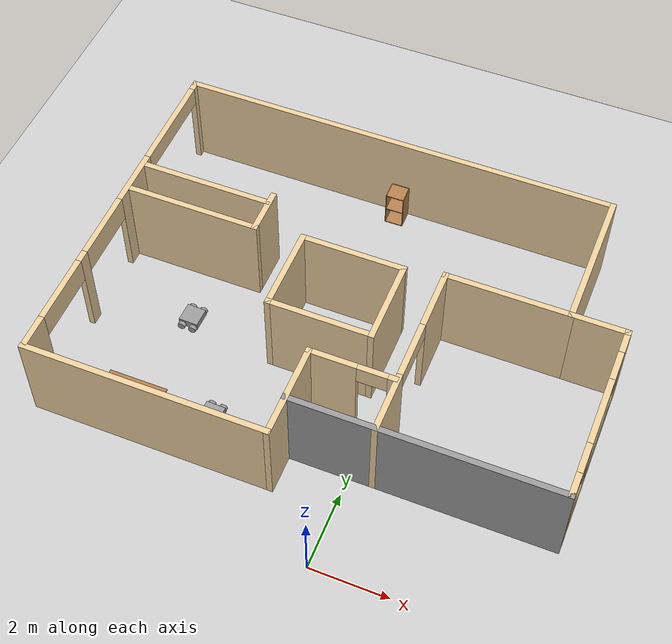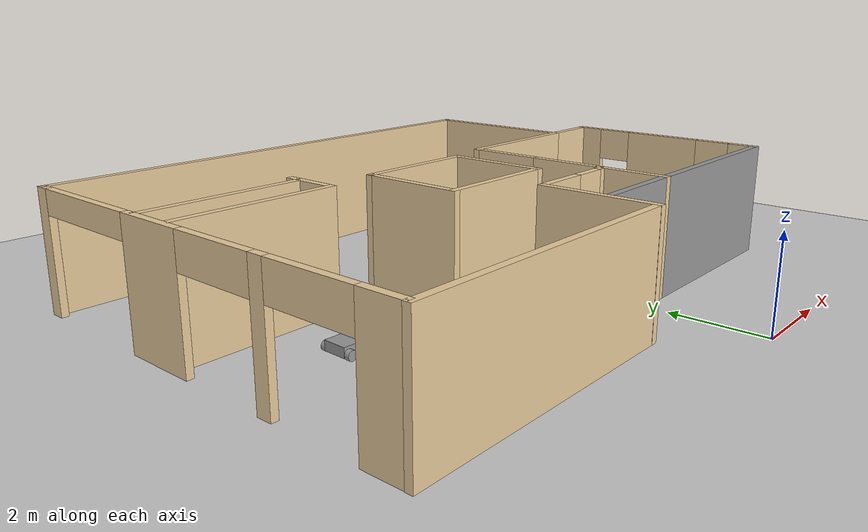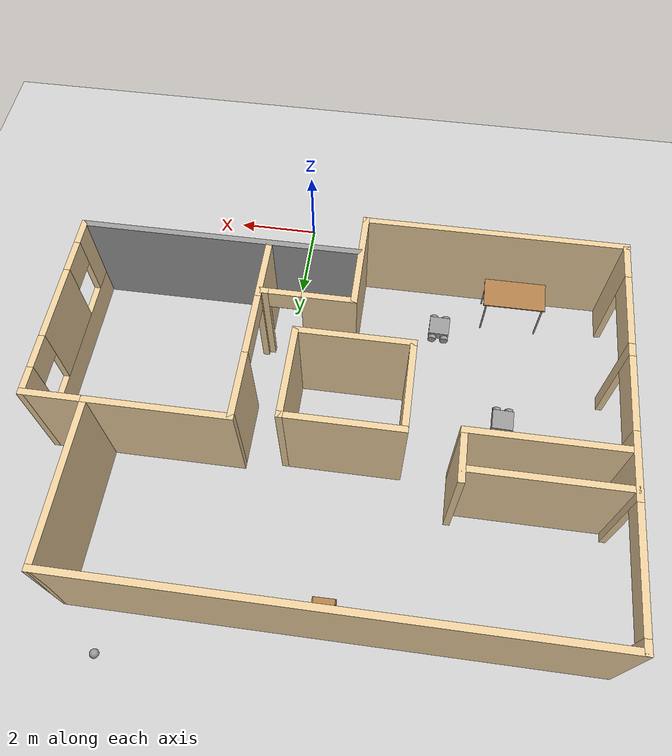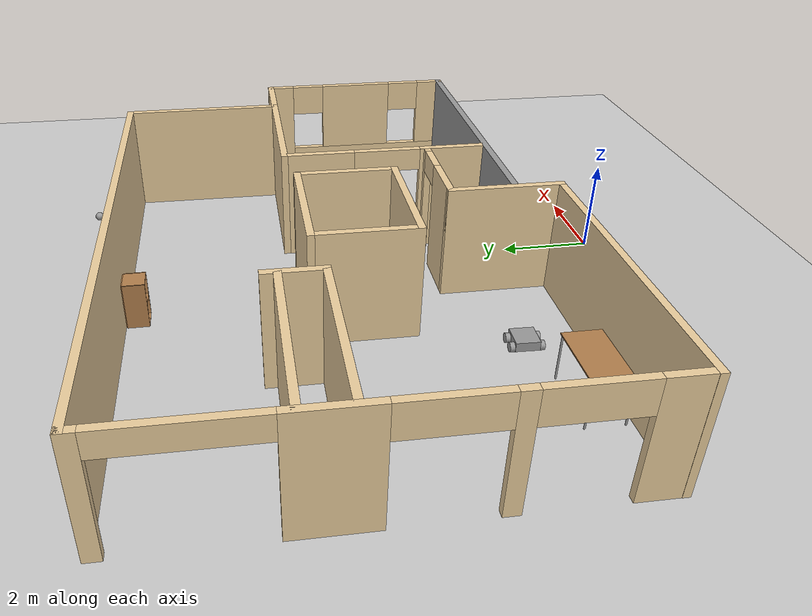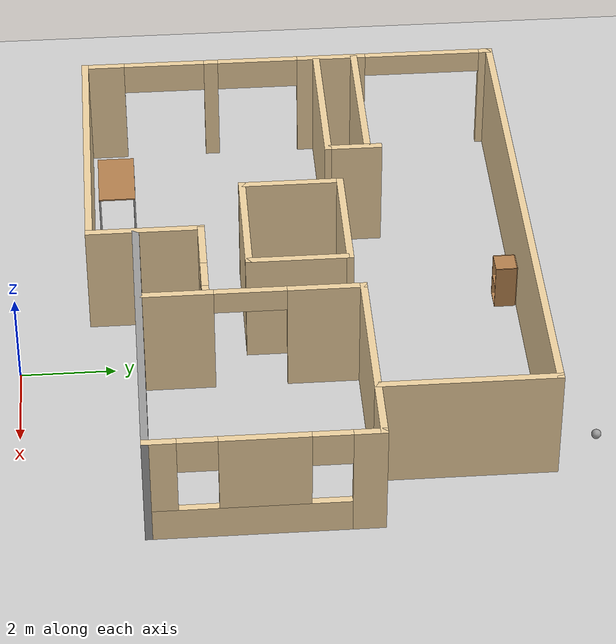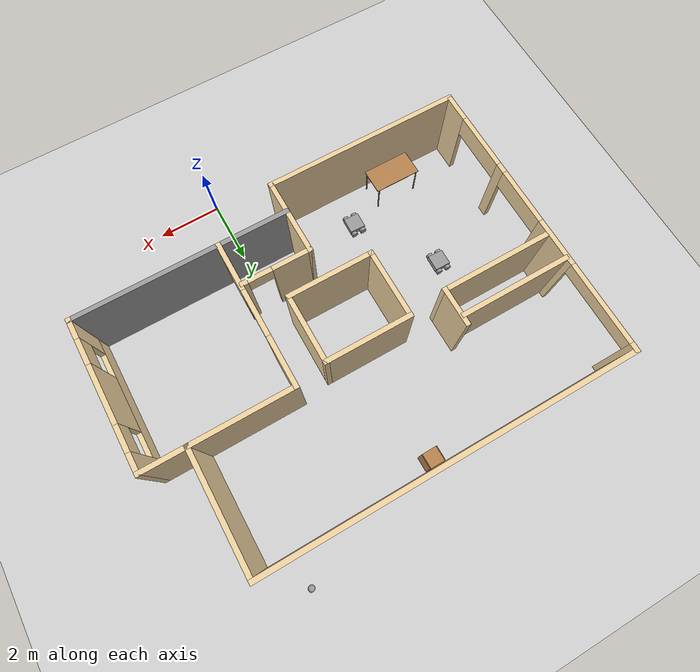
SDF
<sdf version="1.6">
 <world name="default">
  <plugin name="welcome_message" filename="libwelcome_message.so"/>
  <light name="sun" type="directional">
   <pose>0 0 10 0 -0 0</pose>
   <diffuse>0.8 0.8 0.8 1</diffuse>
   <specular>0.2 0.2 0.2 1</specular>
   <attenuation>
    <range>1000</range>
    <constant>0.9</constant>
    <linear>0.01</linear>
    <quadratic>0.001</quadratic>
   </attenuation>
   <direction>-0.5 0.1 -0.9</direction>
  </light>
  <model name="ground_plane">
   <static>1</static>
   <link name="link">
    <collision name="collision">
     <geometry><plane><normal>0 0 1</normal><size>100 100</size></plane></geometry>
     <surface>
      <contact><collide_bitmask>65535</collide_bitmask></contact>
      <friction><ode><mu>100</mu><mu2>50</mu2></ode></friction>
     </surface>
    </collision>
    <visual name="visual">
     <cast_shadows>0</cast_shadows>
     <geometry><plane><normal>0 0 1</normal><size>100 100</size></plane></geometry>
     <material>
      <script><uri>file://media/materials/scripts/gazebo.material</uri><name>Gazebo/Grey</name></script>
     </material>
    </visual>
   </link>
  </model>
  <gravity>0 0 -9.8</gravity>
  <magnetic_field>6e-06 2.3e-05 -4.2e-05</magnetic_field>
  <atmosphere type="adiabatic"/>
  <physics name="default_physics" default="0" type="ode">
   <max_step_size>0.001</max_step_size>
   <real_time_factor>1</real_time_factor>
   <real_time_update_rate>1000</real_time_update_rate>
  </physics>
  <scene><ambient>0.4 0.4 0.4 1</ambient><background>0.7 0.7 0.7 1</background><shadows>1</shadows></scene>
  <spherical_coordinates>
   <surface_model>EARTH_WGS84</surface_model>
   <latitude_deg>0</latitude_deg>
   <longitude_deg>0</longitude_deg>
   <elevation>0</elevation>
   <heading_deg>0</heading_deg>
  </spherical_coordinates>
  <model name="House">
   <pose>-1.30883 6.14848 0 0 -0 0</pose>
   <link name="Wall_1">
    <pose>-6.34695 0.039471 0 0 -0 1.5708</pose>
    <visual name="Wall_1_Visual_0">
     <pose>-4.18586 0 1.25 0 -0 0</pose>
     <geometry><box><size>0.878291 0.15 2.5</size></box></geometry>
     <material>
      <script><uri>file://media/materials/scripts/gazebo.material</uri><name>Gazebo/Grey</name></script>
      <ambient>0.921569 0.807843 0.615686 1</ambient>
     </material>
     <meta><layer>0</layer></meta>
    </visual>
    <collision name="Wall_1_Collision_0">
     <geometry><box><size>0.878291 0.15 2.5</size></box></geometry>
     <pose>-4.18586 0 1.25 0 -0 0</pose>
    </collision>
    <visual name="Wall_1_Visual_1">
     <pose>-1.78871 0 1.25 0 -0 0</pose>
     <geometry><box><size>0.316 0.15 2.5</size></box></geometry>
     <material>
      <script><uri>file://media/materials/scripts/gazebo.material</uri><name>Gazebo/Grey</name></script>
      <ambient>0.921569 0.807843 0.615686 1</ambient>
     </material>
     <meta><layer>0</layer></meta>
    </visual>
    <collision name="Wall_1_Collision_1">
     <geometry><box><size>0.316 0.15 2.5</size></box></geometry>
     <pose>-1.78871 0 1.25 0 -0 0</pose>
    </collision>
    <visual name="Wall_1_Visual_2">
     <pose>0.943988 0 1.25 0 -0 0</pose>
     <geometry><box><size>1.5494 0.15 2.5</size></box></geometry>
     <material>
      <script><uri>file://media/materials/scripts/gazebo.material</uri><name>Gazebo/Grey</name></script>
      <ambient>0.921569 0.807843 0.615686 1</ambient>
     </material>
     <meta><layer>0</layer></meta>
    </visual>
    <collision name="Wall_1_Collision_2">
     <geometry><box><size>1.5494 0.15 2.5</size></box></geometry>
     <pose>0.943988 0 1.25 0 -0 0</pose>
    </collision>
    <visual name="Wall_1_Visual_3">
     <pose>4.46934 0 1.25 0 -0 0</pose>
     <geometry><box><size>0.311314 0.15 2.5</size></box></geometry>
     <material>
      <script><uri>file://media/materials/scripts/gazebo.material</uri><name>Gazebo/Grey</name></script>
      <ambient>0.921569 0.807843 0.615686 1</ambient>
     </material>
     <meta><layer>0</layer></meta>
    </visual>
    <collision name="Wall_1_Collision_3">
     <geometry><box><size>0.311314 0.15 2.5</size></box></geometry>
     <pose>4.46934 0 1.25 0 -0 0</pose>
    </collision>
    <visual name="Wall_1_Visual_4">
     <pose>-2.84671 0 2.15 0 -0 0</pose>
     <geometry><box><size>1.8 0.15 0.7</size></box></geometry>
     <material>
      <script><uri>file://media/materials/scripts/gazebo.material</uri><name>Gazebo/Grey</name></script>
      <ambient>0.921569 0.807843 0.615686 1</ambient>
     </material>
     <meta><layer>0</layer></meta>
    </visual>
    <collision name="Wall_1_Collision_4">
     <geometry><box><size>1.8 0.15 0.7</size></box></geometry>
     <pose>-2.84671 0 2.15 0 -0 0</pose>
    </collision>
    <visual name="Wall_1_Visual_5">
     <pose>-0.730709 0 2.15 0 -0 0</pose>
     <geometry><box><size>1.8 0.15 0.7</size></box></geometry>
     <material>
      <script><uri>file://media/materials/scripts/gazebo.material</uri><name>Gazebo/Grey</name></script>
      <ambient>0.921569 0.807843 0.615686 1</ambient>
     </material>
     <meta><layer>0</layer></meta>
    </visual>
    <collision name="Wall_1_Collision_5">
     <geometry><box><size>1.8 0.15 0.7</size></box></geometry>
     <pose>-0.730709 0 2.15 0 -0 0</pose>
    </collision>
    <visual name="Wall_1_Visual_6">
     <pose>3.01619 0 2.25 0 -0 0</pose>
     <geometry><box><size>2.595 0.15 0.5</size></box></geometry>
     <material>
      <script><uri>file://media/materials/scripts/gazebo.material</uri><name>Gazebo/Grey</name></script>
      <ambient>0.921569 0.807843 0.615686 1</ambient>
     </material>
     <meta><layer>0</layer></meta>
    </visual>
    <collision name="Wall_1_Collision_6">
     <geometry><box><size>2.595 0.15 0.5</size></box></geometry>
     <pose>3.01619 0 2.25 0 -0 0</pose>
    </collision>
   </link>
   <link name="Wall_10">
    <collision name="Wall_10_Collision">
     <geometry><box><size>3.25 0.15 2.5</size></box></geometry>
     <pose>0 0 1.25 0 -0 0</pose>
    </collision>
    <visual name="Wall_10_Visual">
     <pose>0 0 1.25 0 -0 0</pose>
     <geometry><box><size>3.25 0.15 2.5</size></box></geometry>
     <material>
      <script><uri>file://media/materials/scripts/gazebo.material</uri><name>Gazebo/Grey</name></script>
      <ambient>0.921569 0.807843 0.615686 1</ambient>
     </material>
     <meta><layer>0</layer></meta>
    </visual>
    <pose>3.45305 0.989471 0 0 -0 3.14159</pose>
   </link>
   <link name="Wall_11">
    <pose>1.90305 -1.31053 0 0 0 -1.5708</pose>
    <visual name="Wall_11_Visual_0">
     <pose>-1.55351 0 1.25 0 -0 0</pose>
     <geometry><box><size>1.64298 0.15 2.5</size></box></geometry>
     <material>
      <script><uri>file://media/materials/scripts/gazebo.material</uri><name>Gazebo/Grey</name></script>
      <ambient>0.921569 0.807843 0.615686 1</ambient>
     </material>
     <meta><layer>0</layer></meta>
    </visual>
    <collision name="Wall_11_Collision_0">
     <geometry><box><size>1.64298 0.15 2.5</size></box></geometry>
     <pose>-1.55351 0 1.25 0 -0 0</pose>
    </collision>
    <visual name="Wall_11_Visual_1">
     <pose>1.57149 0 1.25 0 -0 0</pose>
     <geometry><box><size>1.60702 0.15 2.5</size></box></geometry>
     <material>
      <script><uri>file://media/materials/scripts/gazebo.material</uri><name>Gazebo/Grey</name></script>
      <ambient>0.921569 0.807843 0.615686 1</ambient>
     </material>
     <meta><layer>0</layer></meta>
    </visual>
    <collision name="Wall_11_Collision_1">
     <geometry><box><size>1.60702 0.15 2.5</size></box></geometry>
     <pose>1.57149 0 1.25 0 -0 0</pose>
    </collision>
    <visual name="Wall_11_Visual_2">
     <pose>0.017978 0 2.25 0 -0 0</pose>
     <geometry><box><size>1.5 0.15 0.5</size></box></geometry>
     <material>
      <script><uri>file://media/materials/scripts/gazebo.material</uri><name>Gazebo/Grey</name></script>
      <ambient>0.921569 0.807843 0.615686 1</ambient>
     </material>
     <meta><layer>0</layer></meta>
    </visual>
    <collision name="Wall_11_Collision_2">
     <geometry><box><size>1.5 0.15 0.5</size></box></geometry>
     <pose>0.017978 0 2.25 0 -0 0</pose>
    </collision>
   </link>
   <link name="Wall_18">
    <collision name="Wall_18_Collision">
     <geometry><box><size>2.5 0.15 2.5</size></box></geometry>
     <pose>0 0 1.25 0 -0 0</pose>
    </collision>
    <visual name="Wall_18_Visual">
     <pose>0 0 1.25 0 -0 0</pose>
     <geometry><box><size>2.5 0.15 2.5</size></box></geometry>
     <material>
      <script><uri>file://media/materials/scripts/gazebo.material</uri><name>Gazebo/Grey</name></script>
      <ambient>0.921569 0.807843 0.615686 1</ambient>
     </material>
     <meta><layer>0</layer></meta>
    </visual>
    <pose>-0.253052 -3.41447 0 0 -0 1.5708</pose>
   </link>
   <link name="Wall_2">
    <collision name="Wall_2_Collision">
     <geometry><box><size>11.5 0.15 2.5</size></box></geometry>
     <pose>0 0 1.25 0 -0 0</pose>
    </collision>
    <visual name="Wall_2_Visual">
     <pose>0 0 1.25 0 -0 0</pose>
     <geometry><box><size>11.5 0.15 2.5</size></box></geometry>
     <material>
      <script><uri>file://media/materials/scripts/gazebo.material</uri><name>Gazebo/Grey</name></script>
      <ambient>0.921569 0.807843 0.615686 1</ambient>
     </material>
     <meta><layer>0</layer></meta>
    </visual>
    <pose>-0.671948 4.58947 0 0 -0 0</pose>
   </link>
   <link name="Wall_20">
    <pose>0.796948 -2.23947 0 0 -0 0</pose>
    <visual name="Wall_20_Visual_0">
     <pose>-0.492928 0 1.25 0 -0 0</pose>
     <geometry><box><size>1.26415 0.15 2.5</size></box></geometry>
     <material>
      <script><uri>file://media/materials/scripts/gazebo.material</uri><name>Gazebo/Grey</name></script>
      <ambient>0.921569 0.807843 0.615686 1</ambient>
     </material>
     <meta><layer>0</layer></meta>
    </visual>
    <collision name="Wall_20_Collision_0">
     <geometry><box><size>1.26415 0.15 2.5</size></box></geometry>
     <pose>-0.492928 0 1.25 0 -0 0</pose>
    </collision>
    <visual name="Wall_20_Visual_1">
     <pose>1.00707 0 1.25 0 -0 0</pose>
     <geometry><box><size>0.235855 0.15 2.5</size></box></geometry>
     <material>
      <script><uri>file://media/materials/scripts/gazebo.material</uri><name>Gazebo/Grey</name></script>
      <ambient>0.921569 0.807843 0.615686 1</ambient>
     </material>
     <meta><layer>0</layer></meta>
    </visual>
    <collision name="Wall_20_Collision_1">
     <geometry><box><size>0.235855 0.15 2.5</size></box></geometry>
     <pose>1.00707 0 1.25 0 -0 0</pose>
    </collision>
    <visual name="Wall_20_Visual_2">
     <pose>0.514145 0 2.25 0 -0 0</pose>
     <geometry><box><size>0.75 0.15 0.5</size></box></geometry>
     <material>
      <script><uri>file://media/materials/scripts/gazebo.material</uri><name>Gazebo/Grey</name></script>
      <ambient>0.921569 0.807843 0.615686 1</ambient>
     </material>
     <meta><layer>0</layer></meta>
    </visual>
    <collision name="Wall_20_Collision_2">
     <geometry><box><size>0.75 0.15 0.5</size></box></geometry>
     <pose>0.514145 0 2.25 0 -0 0</pose>
    </collision>
   </link>
   <link name="Wall_26">
    <collision name="Wall_26_Collision">
     <geometry><box><size>2.75 0.15 2.5</size></box></geometry>
     <pose>0 0 1.25 0 -0 0</pose>
    </collision>
    <visual name="Wall_26_Visual">
     <pose>0 0 1.25 0 -0 0</pose>
     <geometry><box><size>2.75 0.15 2.5</size></box></geometry>
     <material>
      <script><uri>file://media/materials/scripts/gazebo.material</uri><name>Gazebo/Grey</name></script>
      <ambient>0.921569 0.807843 0.615686 1</ambient>
     </material>
     <meta><layer>0</layer></meta>
    </visual>
    <pose>-0.379097 0.799447 0 0 -0 3.14159</pose>
   </link>
   <link name="Wall_27">
    <collision name="Wall_27_Collision">
     <geometry><box><size>2.25 0.15 2.5</size></box></geometry>
     <pose>0 0 1.25 0 -0 0</pose>
    </collision>
    <visual name="Wall_27_Visual">
     <pose>0 0 1.25 0 -0 0</pose>
     <geometry><box><size>2.25 0.15 2.5</size></box></geometry>
     <material>
      <script><uri>file://media/materials/scripts/gazebo.material</uri><name>Gazebo/Grey</name></script>
      <ambient>0.921569 0.807843 0.615686 1</ambient>
     </material>
     <meta><layer>0</layer></meta>
    </visual>
    <pose>-1.6791 -0.250553 0 0 0 -1.5708</pose>
   </link>
   <link name="Wall_28">
    <collision name="Wall_28_Collision">
     <geometry><box><size>2.75 0.15 2.5</size></box></geometry>
     <pose>0 0 1.25 0 -0 0</pose>
    </collision>
    <visual name="Wall_28_Visual">
     <pose>0 0 1.25 0 -0 0</pose>
     <geometry><box><size>2.75 0.15 2.5</size></box></geometry>
     <material>
      <script><uri>file://media/materials/scripts/gazebo.material</uri><name>Gazebo/Grey</name></script>
      <ambient>0.921569 0.807843 0.615686 1</ambient>
     </material>
     <meta><layer>0</layer></meta>
    </visual>
    <pose>-0.379097 -1.30055 0 0 -0 0</pose>
   </link>
   <link name="Wall_29">
    <collision name="Wall_29_Collision">
     <geometry><box><size>2.25 0.15 2.5</size></box></geometry>
     <pose>0 0 1.25 0 -0 0</pose>
    </collision>
    <visual name="Wall_29_Visual">
     <pose>0 0 1.25 0 -0 0</pose>
     <geometry><box><size>2.25 0.15 2.5</size></box></geometry>
     <material>
      <script><uri>file://media/materials/scripts/gazebo.material</uri><name>Gazebo/Grey</name></script>
      <ambient>0.921569 0.807843 0.615686 1</ambient>
     </material>
     <meta><layer>0</layer></meta>
    </visual>
    <pose>0.920903 -0.250553 0 0 -0 1.5708</pose>
   </link>
   <link name="Wall_3">
    <collision name="Wall_3_Collision">
     <geometry><box><size>3.75 0.15 2.5</size></box></geometry>
     <pose>0 0 1.25 0 -0 0</pose>
    </collision>
    <visual name="Wall_3_Visual">
     <pose>0 0 1.25 0 -0 0</pose>
     <geometry><box><size>3.75 0.15 2.5</size></box></geometry>
     <material>
      <script><uri>file://media/materials/scripts/gazebo.material</uri><name>Gazebo/Grey</name></script>
      <ambient>0.921569 0.807843 0.615686 1</ambient>
     </material>
     <meta><layer>0</layer></meta>
    </visual>
    <pose>5.00305 2.78947 0 0 0 -1.5708</pose>
   </link>
   <link name="Wall_33">
    <collision name="Wall_33_Collision">
     <geometry><box><size>3.5 0.15 2.5</size></box></geometry>
     <pose>0 0 1.25 0 -0 0</pose>
    </collision>
    <visual name="Wall_33_Visual">
     <pose>0 0 1.25 0 -0 0</pose>
     <geometry><box><size>3.5 0.15 2.5</size></box></geometry>
     <material>
      <script><uri>file://media/materials/scripts/gazebo.material</uri><name>Gazebo/Grey</name></script>
      <ambient>0.921569 0.807843 0.615686 1</ambient>
     </material>
     <meta><layer>0</layer></meta>
    </visual>
    <pose>-4.61304 1.49905 0 0 -0 0</pose>
   </link>
   <link name="Wall_36">
    <collision name="Wall_36_Collision">
     <geometry><box><size>1.25 0.15 2.5</size></box></geometry>
     <pose>0 0 1.25 0 -0 0</pose>
    </collision>
    <visual name="Wall_36_Visual">
     <pose>0 0 1.25 0 -0 0</pose>
     <geometry><box><size>1.25 0.15 2.5</size></box></geometry>
     <material>
      <script><uri>file://media/materials/scripts/gazebo.material</uri><name>Gazebo/Grey</name></script>
      <ambient>0.921569 0.807843 0.615686 1</ambient>
     </material>
     <meta><layer>0</layer></meta>
    </visual>
    <pose>-2.88129 1.19239 0 0 0 -1.5708</pose>
   </link>
   <link name="Wall_37">
    <collision name="Wall_37_Collision">
     <geometry><box><size>3.5 0.15 2.5</size></box></geometry>
     <pose>0 0 1.25 0 -0 0</pose>
    </collision>
    <visual name="Wall_37_Visual">
     <pose>0 0 1.25 0 -0 0</pose>
     <geometry><box><size>3.5 0.15 2.5</size></box></geometry>
     <material>
      <script><uri>file://media/materials/scripts/gazebo.material</uri><name>Gazebo/Grey</name></script>
      <ambient>0.921569 0.807843 0.615686 1</ambient>
     </material>
     <meta><layer>0</layer></meta>
    </visual>
    <pose>-4.55628 0.642389 0 0 -0 3.14159</pose>
   </link>
   <link name="Wall_39">
    <collision name="Wall_39_Collision">
     <geometry><box><size>6.75 0.15 2.5</size></box></geometry>
     <pose>0 0 1.25 0 -0 0</pose>
    </collision>
    <visual name="Wall_39_Visual">
     <pose>0 0 1.25 0 -0 0</pose>
     <geometry><box><size>6.75 0.15 2.5</size></box></geometry>
     <material>
      <script><uri>file://media/materials/scripts/gazebo.material</uri><name>Gazebo/Grey</name></script>
      <ambient>1 1 1 1</ambient>
     </material>
     <meta><layer>0</layer></meta>
    </visual>
    <pose>3.05305 -3.61053 0 0 -0 3.14159</pose>
   </link>
   <link name="Wall_4">
    <collision name="Wall_4_Collision">
     <geometry><box><size>1.5 0.15 2.5</size></box></geometry>
     <pose>0 0 1.25 0 -0 0</pose>
    </collision>
    <visual name="Wall_4_Visual">
     <pose>0 0 1.25 0 -0 0</pose>
     <geometry><box><size>1.5 0.15 2.5</size></box></geometry>
     <material>
      <script><uri>file://media/materials/scripts/gazebo.material</uri><name>Gazebo/Grey</name></script>
      <ambient>0.921569 0.807843 0.615686 1</ambient>
     </material>
     <meta><layer>0</layer></meta>
    </visual>
    <pose>5.67805 0.989471 0 0 -0 0</pose>
   </link>
   <link name="Wall_5">
    <pose>6.35305 -1.31053 0 0 0 -1.5708</pose>
    <visual name="Wall_5_Visual_0">
     <pose>-2.041 0 1.25 0 -0 0</pose>
     <geometry><box><size>0.668009 0.15 2.5</size></box></geometry>
     <material>
      <script><uri>file://media/materials/scripts/gazebo.material</uri><name>Gazebo/Grey</name></script>
      <ambient>0.921569 0.807843 0.615686 1</ambient>
     </material>
     <meta><layer>0</layer></meta>
    </visual>
    <collision name="Wall_5_Collision_0">
     <geometry><box><size>0.668009 0.15 2.5</size></box></geometry>
     <pose>-2.041 0 1.25 0 -0 0</pose>
    </collision>
    <visual name="Wall_5_Visual_1">
     <pose>0.334004 0 0.375 0 -0 0</pose>
     <geometry><box><size>4.08199 0.15 0.75</size></box></geometry>
     <material>
      <script><uri>file://media/materials/scripts/gazebo.material</uri><name>Gazebo/Grey</name></script>
      <ambient>0.921569 0.807843 0.615686 1</ambient>
     </material>
     <meta><layer>0</layer></meta>
    </visual>
    <collision name="Wall_5_Collision_1">
     <geometry><box><size>4.08199 0.15 0.75</size></box></geometry>
     <pose>0.334004 0 0.375 0 -0 0</pose>
    </collision>
    <visual name="Wall_5_Visual_2">
     <pose>-0.004329 0 1.625 0 -0 0</pose>
     <geometry><box><size>1.80533 0.15 1.75</size></box></geometry>
     <material>
      <script><uri>file://media/materials/scripts/gazebo.material</uri><name>Gazebo/Grey</name></script>
      <ambient>0.921569 0.807843 0.615686 1</ambient>
     </material>
     <meta><layer>0</layer></meta>
    </visual>
    <collision name="Wall_5_Collision_2">
     <geometry><box><size>1.80533 0.15 1.75</size></box></geometry>
     <pose>-0.004329 0 1.625 0 -0 0</pose>
    </collision>
    <visual name="Wall_5_Visual_3">
     <pose>2.03667 0 1.625 0 -0 0</pose>
     <geometry><box><size>0.676666 0.15 1.75</size></box></geometry>
     <material>
      <script><uri>file://media/materials/scripts/gazebo.material</uri><name>Gazebo/Grey</name></script>
      <ambient>0.921569 0.807843 0.615686 1</ambient>
     </material>
     <meta><layer>0</layer></meta>
    </visual>
    <collision name="Wall_5_Collision_3">
     <geometry><box><size>0.676666 0.15 1.75</size></box></geometry>
     <pose>2.03667 0 1.625 0 -0 0</pose>
    </collision>
    <visual name="Wall_5_Visual_4">
     <pose>-1.30699 0 2.125 0 -0 0</pose>
     <geometry><box><size>0.8 0.15 0.75</size></box></geometry>
     <material>
      <script><uri>file://media/materials/scripts/gazebo.material</uri><name>Gazebo/Grey</name></script>
      <ambient>0.921569 0.807843 0.615686 1</ambient>
     </material>
     <meta><layer>0</layer></meta>
    </visual>
    <collision name="Wall_5_Collision_4">
     <geometry><box><size>0.8 0.15 0.75</size></box></geometry>
     <pose>-1.30699 0 2.125 0 -0 0</pose>
    </collision>
    <visual name="Wall_5_Visual_5">
     <pose>1.29833 0 2.125 0 -0 0</pose>
     <geometry><box><size>0.8 0.15 0.75</size></box></geometry>
     <material>
      <script><uri>file://media/materials/scripts/gazebo.material</uri><name>Gazebo/Grey</name></script>
      <ambient>0.921569 0.807843 0.615686 1</ambient>
     </material>
     <meta><layer>0</layer></meta>
    </visual>
    <collision name="Wall_5_Collision_5">
     <geometry><box><size>0.8 0.15 0.75</size></box></geometry>
     <pose>1.29833 0 2.125 0 -0 0</pose>
    </collision>
   </link>
   <link name="Wall_8">
    <collision name="Wall_8_Collision">
     <geometry><box><size>6.25 0.15 2.5</size></box></geometry>
     <pose>0 0 1.25 0 -0 0</pose>
    </collision>
    <visual name="Wall_8_Visual">
     <pose>0 0 1.25 0 -0 0</pose>
     <geometry><box><size>6.25 0.15 2.5</size></box></geometry>
     <material>
      <script><uri>file://media/materials/scripts/gazebo.material</uri><name>Gazebo/Grey</name></script>
      <ambient>0.921569 0.807843 0.615686 1</ambient>
     </material>
     <meta><layer>0</layer></meta>
    </visual>
    <pose>-3.30305 -4.58515 0 0 -0 3.14159</pose>
   </link>
   <static>1</static>
  </model>
  <model name="Robot">
   <link name="link_0">
    <pose>0 0 0.040024 0 -0 0</pose>
    <inertial>
     <mass>1</mass>
     <inertia>
      <ixx>0.166667</ixx>
      <ixy>0</ixy>
      <ixz>0</ixz>
      <iyy>0.166667</iyy>
      <iyz>0</iyz>
      <izz>0.166667</izz>
     </inertia>
    </inertial>
    <visual name="visual">
     <geometry><box><size>0.5 0.5 0.2</size></box></geometry>
     <material>
      <lighting>1</lighting>
      <script><uri>file://media/materials/scripts/gazebo.material</uri><name>Gazebo/Grey</name></script>
      <shader type="pixel"><normal_map>__default__</normal_map></shader>
      <ambient>0.3 0.3 0.3 1</ambient>
      <diffuse>0.7 0.7 0.7 1</diffuse>
      <specular>0.01 0.01 0.01 1</specular>
      <emissive>0 0 0 1</emissive>
     </material>
    </visual>
    <collision name="collision">
     <geometry><box><size>0.5 0.5 0.2</size></box></geometry>
     <surface>
      <friction>
       <ode><mu>1</mu><mu2>1</mu2><fdir1>0 0 0</fdir1><slip1>0</slip1><slip2>0</slip2></ode>
       <torsional>
        <coefficient>1</coefficient>
        <patch_radius>0</patch_radius>
        <surface_radius>0</surface_radius>
        <use_patch_radius>1</use_patch_radius>
        <ode><slip>0</slip></ode>
       </torsional>
      </friction>
      <bounce><restitution_coefficient>0</restitution_coefficient><threshold>1e+06</threshold></bounce>
      <contact>
       <collide_without_contact>0</collide_without_contact>
       <collide_without_contact_bitmask>1</collide_without_contact_bitmask>
       <collide_bitmask>1</collide_bitmask>
       <ode>
        <soft_cfm>0</soft_cfm>
        <soft_erp>0.2</soft_erp>
        <kp>1e+13</kp>
        <kd>1</kd>
        <max_vel>0.01</max_vel>
        <min_depth>0</min_depth>
       </ode>
       <bullet>
        <split_impulse>1</split_impulse>
        <split_impulse_penetration_threshold>-0.01</split_impulse_penetration_threshold>
        <soft_cfm>0</soft_cfm>
        <soft_erp>0.2</soft_erp>
        <kp>1e+13</kp>
        <kd>1</kd>
       </bullet>
      </contact>
     </surface>
    </collision>
   </link>
   <link name="link_1_clone">
    <pose>-0.15 -0.30001 -0.010006 1.5707 -0 0</pose>
    <inertial>
     <mass>1</mass>
     <inertia><ixx>0.145833</ixx><ixy>0</ixy><ixz>0</ixz><iyy>0.145833</iyy><iyz>0</iyz><izz>0.125</izz></inertia>
    </inertial>
    <visual name="visual">
     <geometry><cylinder><radius>0.1</radius><length>0.1</length></cylinder></geometry>
     <material>
      <lighting>1</lighting>
      <script><uri>file://media/materials/scripts/gazebo.material</uri><name>Gazebo/Grey</name></script>
      <shader type="pixel"><normal_map>__default__</normal_map></shader>
      <ambient>0.3 0.3 0.3 1</ambient>
      <diffuse>0.7 0.7 0.7 1</diffuse>
      <specular>0.01 0.01 0.01 1</specular>
      <emissive>0 0 0 1</emissive>
     </material>
    </visual>
    <collision name="collision">
     <geometry><cylinder><radius>0.1</radius><length>0.1</length></cylinder></geometry>
     <surface>
      <friction>
       <ode><mu>1</mu><mu2>1</mu2><fdir1>0 0 0</fdir1><slip1>0</slip1><slip2>0</slip2></ode>
       <torsional>
        <coefficient>1</coefficient>
        <patch_radius>0</patch_radius>
        <surface_radius>0</surface_radius>
        <use_patch_radius>1</use_patch_radius>
        <ode><slip>0</slip></ode>
       </torsional>
      </friction>
      <bounce><restitution_coefficient>0</restitution_coefficient><threshold>1e+06</threshold></bounce>
      <contact>
       <collide_without_contact>0</collide_without_contact>
       <collide_without_contact_bitmask>1</collide_without_contact_bitmask>
       <collide_bitmask>1</collide_bitmask>
       <ode>
        <soft_cfm>0</soft_cfm>
        <soft_erp>0.2</soft_erp>
        <kp>1e+13</kp>
        <kd>1</kd>
        <max_vel>0.01</max_vel>
        <min_depth>0</min_depth>
       </ode>
       <bullet>
        <split_impulse>1</split_impulse>
        <split_impulse_penetration_threshold>-0.01</split_impulse_penetration_threshold>
        <soft_cfm>0</soft_cfm>
        <soft_erp>0.2</soft_erp>
        <kp>1e+13</kp>
        <kd>1</kd>
       </bullet>
      </contact>
     </surface>
    </collision>
   </link>
   <link name="link_1_clone_0">
    <pose>0.15 0.30001 -0.010006 -1.5707 0 0</pose>
    <inertial>
     <mass>1</mass>
     <inertia><ixx>0.145833</ixx><ixy>0</ixy><ixz>0</ixz><iyy>0.145833</iyy><iyz>0</iyz><izz>0.125</izz></inertia>
    </inertial>
    <visual name="visual">
     <geometry><cylinder><radius>0.1</radius><length>0.1</length></cylinder></geometry>
     <material>
      <lighting>1</lighting>
      <script><uri>file://media/materials/scripts/gazebo.material</uri><name>Gazebo/Grey</name></script>
      <shader type="pixel"><normal_map>__default__</normal_map></shader>
      <ambient>0.3 0.3 0.3 1</ambient>
      <diffuse>0.7 0.7 0.7 1</diffuse>
      <specular>0.01 0.01 0.01 1</specular>
      <emissive>0 0 0 1</emissive>
     </material>
    </visual>
    <collision name="collision">
     <geometry><cylinder><radius>0.1</radius><length>0.1</length></cylinder></geometry>
     <surface>
      <friction>
       <ode><mu>1</mu><mu2>1</mu2><fdir1>0 0 0</fdir1><slip1>0</slip1><slip2>0</slip2></ode>
       <torsional>
        <coefficient>1</coefficient>
        <patch_radius>0</patch_radius>
        <surface_radius>0</surface_radius>
        <use_patch_radius>1</use_patch_radius>
        <ode><slip>0</slip></ode>
       </torsional>
      </friction>
      <bounce><restitution_coefficient>0</restitution_coefficient><threshold>1e+06</threshold></bounce>
      <contact>
       <collide_without_contact>0</collide_without_contact>
       <collide_without_contact_bitmask>1</collide_without_contact_bitmask>
       <collide_bitmask>1</collide_bitmask>
       <ode>
        <soft_cfm>0</soft_cfm>
        <soft_erp>0.2</soft_erp>
        <kp>1e+13</kp>
        <kd>1</kd>
        <max_vel>0.01</max_vel>
        <min_depth>0</min_depth>
       </ode>
       <bullet>
        <split_impulse>1</split_impulse>
        <split_impulse_penetration_threshold>-0.01</split_impulse_penetration_threshold>
        <soft_cfm>0</soft_cfm>
        <soft_erp>0.2</soft_erp>
        <kp>1e+13</kp>
        <kd>1</kd>
       </bullet>
      </contact>
     </surface>
    </collision>
   </link>
   <link name="link_1_clone_0_clone">
    <pose>-0.15 0.30001 -0.010006 -1.5707 0 0</pose>
    <inertial>
     <mass>1</mass>
     <inertia><ixx>0.145833</ixx><ixy>0</ixy><ixz>0</ixz><iyy>0.145833</iyy><iyz>0</iyz><izz>0.125</izz></inertia>
    </inertial>
    <visual name="visual">
     <geometry><cylinder><radius>0.1</radius><length>0.1</length></cylinder></geometry>
     <material>
      <lighting>1</lighting>
      <script><uri>file://media/materials/scripts/gazebo.material</uri><name>Gazebo/Grey</name></script>
      <shader type="pixel"><normal_map>__default__</normal_map></shader>
      <ambient>0.3 0.3 0.3 1</ambient>
      <diffuse>0.7 0.7 0.7 1</diffuse>
      <specular>0.01 0.01 0.01 1</specular>
      <emissive>0 0 0 1</emissive>
     </material>
    </visual>
    <collision name="collision">
     <geometry><cylinder><radius>0.1</radius><length>0.1</length></cylinder></geometry>
     <surface>
      <friction>
       <ode><mu>1</mu><mu2>1</mu2><fdir1>0 0 0</fdir1><slip1>0</slip1><slip2>0</slip2></ode>
       <torsional>
        <coefficient>1</coefficient>
        <patch_radius>0</patch_radius>
        <surface_radius>0</surface_radius>
        <use_patch_radius>1</use_patch_radius>
        <ode><slip>0</slip></ode>
       </torsional>
      </friction>
      <bounce><restitution_coefficient>0</restitution_coefficient><threshold>1e+06</threshold></bounce>
      <contact>
       <collide_without_contact>0</collide_without_contact>
       <collide_without_contact_bitmask>1</collide_without_contact_bitmask>
       <collide_bitmask>1</collide_bitmask>
       <ode>
        <soft_cfm>0</soft_cfm>
        <soft_erp>0.2</soft_erp>
        <kp>1e+13</kp>
        <kd>1</kd>
        <max_vel>0.01</max_vel>
        <min_depth>0</min_depth>
       </ode>
       <bullet>
        <split_impulse>1</split_impulse>
        <split_impulse_penetration_threshold>-0.01</split_impulse_penetration_threshold>
        <soft_cfm>0</soft_cfm>
        <soft_erp>0.2</soft_erp>
        <kp>1e+13</kp>
        <kd>1</kd>
       </bullet>
      </contact>
     </surface>
    </collision>
   </link>
   <link name="link_1_clone_clone">
    <pose>0.15 -0.30001 -0.010006 1.5707 -0 0</pose>
    <inertial>
     <mass>1</mass>
     <inertia><ixx>0.145833</ixx><ixy>0</ixy><ixz>0</ixz><iyy>0.145833</iyy><iyz>0</iyz><izz>0.125</izz></inertia>
    </inertial>
    <visual name="visual">
     <geometry><cylinder><radius>0.1</radius><length>0.1</length></cylinder></geometry>
     <material>
      <lighting>1</lighting>
      <script><uri>file://media/materials/scripts/gazebo.material</uri><name>Gazebo/Grey</name></script>
      <shader type="pixel"><normal_map>__default__</normal_map></shader>
      <ambient>0.3 0.3 0.3 1</ambient>
      <diffuse>0.7 0.7 0.7 1</diffuse>
      <specular>0.01 0.01 0.01 1</specular>
      <emissive>0 0 0 1</emissive>
     </material>
    </visual>
    <collision name="collision">
     <geometry><cylinder><radius>0.1</radius><length>0.1</length></cylinder></geometry>
     <surface>
      <friction>
       <ode><mu>1</mu><mu2>1</mu2><fdir1>0 0 0</fdir1><slip1>0</slip1><slip2>0</slip2></ode>
       <torsional>
        <coefficient>1</coefficient>
        <patch_radius>0</patch_radius>
        <surface_radius>0</surface_radius>
        <use_patch_radius>1</use_patch_radius>
        <ode><slip>0</slip></ode>
       </torsional>
      </friction>
      <bounce><restitution_coefficient>0</restitution_coefficient><threshold>1e+06</threshold></bounce>
      <contact>
       <collide_without_contact>0</collide_without_contact>
       <collide_without_contact_bitmask>1</collide_without_contact_bitmask>
       <collide_bitmask>1</collide_bitmask>
       <ode>
        <soft_cfm>0</soft_cfm>
        <soft_erp>0.2</soft_erp>
        <kp>1e+13</kp>
        <kd>1</kd>
        <max_vel>0.01</max_vel>
        <min_depth>0</min_depth>
       </ode>
       <bullet>
        <split_impulse>1</split_impulse>
        <split_impulse_penetration_threshold>-0.01</split_impulse_penetration_threshold>
        <soft_cfm>0</soft_cfm>
        <soft_erp>0.2</soft_erp>
        <kp>1e+13</kp>
        <kd>1</kd>
       </bullet>
      </contact>
     </surface>
    </collision>
   </link>
   <joint name="link_0_JOINT_1" type="revolute">
    <parent>link_0</parent>
    <child>link_1_clone</child>
    <axis>
     <xyz>0 0 1</xyz>
     <use_parent_model_frame>0</use_parent_model_frame>
     <limit>
      <lower>-1.79769e+308</lower>
      <upper>1.79769e+308</upper>
      <effort>-1</effort>
      <velocity>-1</velocity>
     </limit>
     <dynamics>
      <spring_reference>0</spring_reference>
      <spring_stiffness>0</spring_stiffness>
      <damping>0</damping>
     </dynamics>
    </axis>
    <physics>
     <ode><limit><cfm>0</cfm><erp>0.2</erp></limit><suspension><cfm>0</cfm><erp>0.2</erp></suspension></ode>
    </physics>
   </joint>
   <joint name="link_0_JOINT_2" type="revolute">
    <parent>link_0</parent>
    <child>link_1_clone_clone</child>
    <axis>
     <xyz>0 0 1</xyz>
     <use_parent_model_frame>0</use_parent_model_frame>
     <limit>
      <lower>-1.79769e+308</lower>
      <upper>1.79769e+308</upper>
      <effort>-1</effort>
      <velocity>-1</velocity>
     </limit>
     <dynamics>
      <spring_reference>0</spring_reference>
      <spring_stiffness>0</spring_stiffness>
      <damping>0</damping>
     </dynamics>
    </axis>
    <physics>
     <ode><limit><cfm>0</cfm><erp>0.2</erp></limit><suspension><cfm>0</cfm><erp>0.2</erp></suspension></ode>
    </physics>
   </joint>
   <joint name="link_0_JOINT_3" type="revolute">
    <parent>link_0</parent>
    <child>link_1_clone_0_clone</child>
    <axis>
     <xyz>0 0 1</xyz>
     <use_parent_model_frame>0</use_parent_model_frame>
     <limit>
      <lower>-1.79769e+308</lower>
      <upper>1.79769e+308</upper>
      <effort>-1</effort>
      <velocity>-1</velocity>
     </limit>
     <dynamics>
      <spring_reference>0</spring_reference>
      <spring_stiffness>0</spring_stiffness>
      <damping>0</damping>
     </dynamics>
    </axis>
    <physics>
     <ode><limit><cfm>0</cfm><erp>0.2</erp></limit><suspension><cfm>0</cfm><erp>0.2</erp></suspension></ode>
    </physics>
   </joint>
   <joint name="link_0_JOINT_5" type="revolute">
    <parent>link_0</parent>
    <child>link_1_clone_0</child>
    <axis>
     <xyz>0 0 1</xyz>
     <use_parent_model_frame>0</use_parent_model_frame>
     <limit>
      <lower>-1.79769e+308</lower>
      <upper>1.79769e+308</upper>
      <effort>-1</effort>
      <velocity>-1</velocity>
     </limit>
     <dynamics>
      <spring_reference>0</spring_reference>
      <spring_stiffness>0</spring_stiffness>
      <damping>0</damping>
     </dynamics>
    </axis>
    <physics>
     <ode><limit><cfm>0</cfm><erp>0.2</erp></limit><suspension><cfm>0</cfm><erp>0.2</erp></suspension></ode>
    </physics>
   </joint>
   <static>0</static>
   <pose>-5.33364 5.26811 0.110009 7e-06 -0 -0.026523</pose>
  </model>
  <model name="Robot_0">
   <link name="link_0">
    <pose>0 0 0.040024 0 -0 0</pose>
    <inertial>
     <mass>1</mass>
     <inertia>
      <ixx>0.166667</ixx>
      <ixy>0</ixy>
      <ixz>0</ixz>
      <iyy>0.166667</iyy>
      <iyz>0</iyz>
      <izz>0.166667</izz>
     </inertia>
    </inertial>
    <visual name="visual">
     <geometry><box><size>0.5 0.5 0.2</size></box></geometry>
     <material>
      <lighting>1</lighting>
      <script><uri>file://media/materials/scripts/gazebo.material</uri><name>Gazebo/Grey</name></script>
      <shader type="pixel"><normal_map>__default__</normal_map></shader>
      <ambient>0.3 0.3 0.3 1</ambient>
      <diffuse>0.7 0.7 0.7 1</diffuse>
      <specular>0.01 0.01 0.01 1</specular>
      <emissive>0 0 0 1</emissive>
     </material>
    </visual>
    <collision name="collision">
     <geometry><box><size>0.5 0.5 0.2</size></box></geometry>
     <surface>
      <friction>
       <ode><mu>1</mu><mu2>1</mu2><fdir1>0 0 0</fdir1><slip1>0</slip1><slip2>0</slip2></ode>
       <torsional>
        <coefficient>1</coefficient>
        <patch_radius>0</patch_radius>
        <surface_radius>0</surface_radius>
        <use_patch_radius>1</use_patch_radius>
        <ode><slip>0</slip></ode>
       </torsional>
      </friction>
      <bounce><restitution_coefficient>0</restitution_coefficient><threshold>1e+06</threshold></bounce>
      <contact>
       <collide_without_contact>0</collide_without_contact>
       <collide_without_contact_bitmask>1</collide_without_contact_bitmask>
       <collide_bitmask>1</collide_bitmask>
       <ode>
        <soft_cfm>0</soft_cfm>
        <soft_erp>0.2</soft_erp>
        <kp>1e+13</kp>
        <kd>1</kd>
        <max_vel>0.01</max_vel>
        <min_depth>0</min_depth>
       </ode>
       <bullet>
        <split_impulse>1</split_impulse>
        <split_impulse_penetration_threshold>-0.01</split_impulse_penetration_threshold>
        <soft_cfm>0</soft_cfm>
        <soft_erp>0.2</soft_erp>
        <kp>1e+13</kp>
        <kd>1</kd>
       </bullet>
      </contact>
     </surface>
    </collision>
   </link>
   <link name="link_1_clone">
    <pose>-0.15 -0.30001 -0.010006 1.5707 -0 0</pose>
    <inertial>
     <mass>1</mass>
     <inertia><ixx>0.145833</ixx><ixy>0</ixy><ixz>0</ixz><iyy>0.145833</iyy><iyz>0</iyz><izz>0.125</izz></inertia>
    </inertial>
    <visual name="visual">
     <geometry><cylinder><radius>0.1</radius><length>0.1</length></cylinder></geometry>
     <material>
      <lighting>1</lighting>
      <script><uri>file://media/materials/scripts/gazebo.material</uri><name>Gazebo/Grey</name></script>
      <shader type="pixel"><normal_map>__default__</normal_map></shader>
      <ambient>0.3 0.3 0.3 1</ambient>
      <diffuse>0.7 0.7 0.7 1</diffuse>
      <specular>0.01 0.01 0.01 1</specular>
      <emissive>0 0 0 1</emissive>
     </material>
    </visual>
    <collision name="collision">
     <geometry><cylinder><radius>0.1</radius><length>0.1</length></cylinder></geometry>
     <surface>
      <friction>
       <ode><mu>1</mu><mu2>1</mu2><fdir1>0 0 0</fdir1><slip1>0</slip1><slip2>0</slip2></ode>
       <torsional>
        <coefficient>1</coefficient>
        <patch_radius>0</patch_radius>
        <surface_radius>0</surface_radius>
        <use_patch_radius>1</use_patch_radius>
        <ode><slip>0</slip></ode>
       </torsional>
      </friction>
      <bounce><restitution_coefficient>0</restitution_coefficient><threshold>1e+06</threshold></bounce>
      <contact>
       <collide_without_contact>0</collide_without_contact>
       <collide_without_contact_bitmask>1</collide_without_contact_bitmask>
       <collide_bitmask>1</collide_bitmask>
       <ode>
        <soft_cfm>0</soft_cfm>
        <soft_erp>0.2</soft_erp>
        <kp>1e+13</kp>
        <kd>1</kd>
        <max_vel>0.01</max_vel>
        <min_depth>0</min_depth>
       </ode>
       <bullet>
        <split_impulse>1</split_impulse>
        <split_impulse_penetration_threshold>-0.01</split_impulse_penetration_threshold>
        <soft_cfm>0</soft_cfm>
        <soft_erp>0.2</soft_erp>
        <kp>1e+13</kp>
        <kd>1</kd>
       </bullet>
      </contact>
     </surface>
    </collision>
   </link>
   <link name="link_1_clone_0">
    <pose>0.15 0.30001 -0.010006 -1.5707 0 0</pose>
    <inertial>
     <mass>1</mass>
     <inertia><ixx>0.145833</ixx><ixy>0</ixy><ixz>0</ixz><iyy>0.145833</iyy><iyz>0</iyz><izz>0.125</izz></inertia>
    </inertial>
    <visual name="visual">
     <geometry><cylinder><radius>0.1</radius><length>0.1</length></cylinder></geometry>
     <material>
      <lighting>1</lighting>
      <script><uri>file://media/materials/scripts/gazebo.material</uri><name>Gazebo/Grey</name></script>
      <shader type="pixel"><normal_map>__default__</normal_map></shader>
      <ambient>0.3 0.3 0.3 1</ambient>
      <diffuse>0.7 0.7 0.7 1</diffuse>
      <specular>0.01 0.01 0.01 1</specular>
      <emissive>0 0 0 1</emissive>
     </material>
    </visual>
    <collision name="collision">
     <geometry><cylinder><radius>0.1</radius><length>0.1</length></cylinder></geometry>
     <surface>
      <friction>
       <ode><mu>1</mu><mu2>1</mu2><fdir1>0 0 0</fdir1><slip1>0</slip1><slip2>0</slip2></ode>
       <torsional>
        <coefficient>1</coefficient>
        <patch_radius>0</patch_radius>
        <surface_radius>0</surface_radius>
        <use_patch_radius>1</use_patch_radius>
        <ode><slip>0</slip></ode>
       </torsional>
      </friction>
      <bounce><restitution_coefficient>0</restitution_coefficient><threshold>1e+06</threshold></bounce>
      <contact>
       <collide_without_contact>0</collide_without_contact>
       <collide_without_contact_bitmask>1</collide_without_contact_bitmask>
       <collide_bitmask>1</collide_bitmask>
       <ode>
        <soft_cfm>0</soft_cfm>
        <soft_erp>0.2</soft_erp>
        <kp>1e+13</kp>
        <kd>1</kd>
        <max_vel>0.01</max_vel>
        <min_depth>0</min_depth>
       </ode>
       <bullet>
        <split_impulse>1</split_impulse>
        <split_impulse_penetration_threshold>-0.01</split_impulse_penetration_threshold>
        <soft_cfm>0</soft_cfm>
        <soft_erp>0.2</soft_erp>
        <kp>1e+13</kp>
        <kd>1</kd>
       </bullet>
      </contact>
     </surface>
    </collision>
   </link>
   <link name="link_1_clone_0_clone">
    <pose>-0.15 0.30001 -0.010006 -1.5707 0 0</pose>
    <inertial>
     <mass>1</mass>
     <inertia><ixx>0.145833</ixx><ixy>0</ixy><ixz>0</ixz><iyy>0.145833</iyy><iyz>0</iyz><izz>0.125</izz></inertia>
    </inertial>
    <visual name="visual">
     <geometry><cylinder><radius>0.1</radius><length>0.1</length></cylinder></geometry>
     <material>
      <lighting>1</lighting>
      <script><uri>file://media/materials/scripts/gazebo.material</uri><name>Gazebo/Grey</name></script>
      <shader type="pixel"><normal_map>__default__</normal_map></shader>
      <ambient>0.3 0.3 0.3 1</ambient>
      <diffuse>0.7 0.7 0.7 1</diffuse>
      <specular>0.01 0.01 0.01 1</specular>
      <emissive>0 0 0 1</emissive>
     </material>
    </visual>
    <collision name="collision">
     <geometry><cylinder><radius>0.1</radius><length>0.1</length></cylinder></geometry>
     <surface>
      <friction>
       <ode><mu>1</mu><mu2>1</mu2><fdir1>0 0 0</fdir1><slip1>0</slip1><slip2>0</slip2></ode>
       <torsional>
        <coefficient>1</coefficient>
        <patch_radius>0</patch_radius>
        <surface_radius>0</surface_radius>
        <use_patch_radius>1</use_patch_radius>
        <ode><slip>0</slip></ode>
       </torsional>
      </friction>
      <bounce><restitution_coefficient>0</restitution_coefficient><threshold>1e+06</threshold></bounce>
      <contact>
       <collide_without_contact>0</collide_without_contact>
       <collide_without_contact_bitmask>1</collide_without_contact_bitmask>
       <collide_bitmask>1</collide_bitmask>
       <ode>
        <soft_cfm>0</soft_cfm>
        <soft_erp>0.2</soft_erp>
        <kp>1e+13</kp>
        <kd>1</kd>
        <max_vel>0.01</max_vel>
        <min_depth>0</min_depth>
       </ode>
       <bullet>
        <split_impulse>1</split_impulse>
        <split_impulse_penetration_threshold>-0.01</split_impulse_penetration_threshold>
        <soft_cfm>0</soft_cfm>
        <soft_erp>0.2</soft_erp>
        <kp>1e+13</kp>
        <kd>1</kd>
       </bullet>
      </contact>
     </surface>
    </collision>
   </link>
   <link name="link_1_clone_clone">
    <pose>0.15 -0.30001 -0.010006 1.5707 -0 0</pose>
    <inertial>
     <mass>1</mass>
     <inertia><ixx>0.145833</ixx><ixy>0</ixy><ixz>0</ixz><iyy>0.145833</iyy><iyz>0</iyz><izz>0.125</izz></inertia>
    </inertial>
    <visual name="visual">
     <geometry><cylinder><radius>0.1</radius><length>0.1</length></cylinder></geometry>
     <material>
      <lighting>1</lighting>
      <script><uri>file://media/materials/scripts/gazebo.material</uri><name>Gazebo/Grey</name></script>
      <shader type="pixel"><normal_map>__default__</normal_map></shader>
      <ambient>0.3 0.3 0.3 1</ambient>
      <diffuse>0.7 0.7 0.7 1</diffuse>
      <specular>0.01 0.01 0.01 1</specular>
      <emissive>0 0 0 1</emissive>
     </material>
    </visual>
    <collision name="collision">
     <geometry><cylinder><radius>0.1</radius><length>0.1</length></cylinder></geometry>
     <surface>
      <friction>
       <ode><mu>1</mu><mu2>1</mu2><fdir1>0 0 0</fdir1><slip1>0</slip1><slip2>0</slip2></ode>
       <torsional>
        <coefficient>1</coefficient>
        <patch_radius>0</patch_radius>
        <surface_radius>0</surface_radius>
        <use_patch_radius>1</use_patch_radius>
        <ode><slip>0</slip></ode>
       </torsional>
      </friction>
      <bounce><restitution_coefficient>0</restitution_coefficient><threshold>1e+06</threshold></bounce>
      <contact>
       <collide_without_contact>0</collide_without_contact>
       <collide_without_contact_bitmask>1</collide_without_contact_bitmask>
       <collide_bitmask>1</collide_bitmask>
       <ode>
        <soft_cfm>0</soft_cfm>
        <soft_erp>0.2</soft_erp>
        <kp>1e+13</kp>
        <kd>1</kd>
        <max_vel>0.01</max_vel>
        <min_depth>0</min_depth>
       </ode>
       <bullet>
        <split_impulse>1</split_impulse>
        <split_impulse_penetration_threshold>-0.01</split_impulse_penetration_threshold>
        <soft_cfm>0</soft_cfm>
        <soft_erp>0.2</soft_erp>
        <kp>1e+13</kp>
        <kd>1</kd>
       </bullet>
      </contact>
     </surface>
    </collision>
   </link>
   <joint name="link_0_JOINT_1" type="revolute">
    <parent>link_0</parent>
    <child>link_1_clone</child>
    <axis>
     <xyz>0 0 1</xyz>
     <use_parent_model_frame>0</use_parent_model_frame>
     <limit>
      <lower>-1.79769e+308</lower>
      <upper>1.79769e+308</upper>
      <effort>-1</effort>
      <velocity>-1</velocity>
     </limit>
     <dynamics>
      <spring_reference>0</spring_reference>
      <spring_stiffness>0</spring_stiffness>
      <damping>0</damping>
     </dynamics>
    </axis>
    <physics>
     <ode><limit><cfm>0</cfm><erp>0.2</erp></limit><suspension><cfm>0</cfm><erp>0.2</erp></suspension></ode>
    </physics>
   </joint>
   <joint name="link_0_JOINT_2" type="revolute">
    <parent>link_0</parent>
    <child>link_1_clone_clone</child>
    <axis>
     <xyz>0 0 1</xyz>
     <use_parent_model_frame>0</use_parent_model_frame>
     <limit>
      <lower>-1.79769e+308</lower>
      <upper>1.79769e+308</upper>
      <effort>-1</effort>
      <velocity>-1</velocity>
     </limit>
     <dynamics>
      <spring_reference>0</spring_reference>
      <spring_stiffness>0</spring_stiffness>
      <damping>0</damping>
     </dynamics>
    </axis>
    <physics>
     <ode><limit><cfm>0</cfm><erp>0.2</erp></limit><suspension><cfm>0</cfm><erp>0.2</erp></suspension></ode>
    </physics>
   </joint>
   <joint name="link_0_JOINT_3" type="revolute">
    <parent>link_0</parent>
    <child>link_1_clone_0_clone</child>
    <axis>
     <xyz>0 0 1</xyz>
     <use_parent_model_frame>0</use_parent_model_frame>
     <limit>
      <lower>-1.79769e+308</lower>
      <upper>1.79769e+308</upper>
      <effort>-1</effort>
      <velocity>-1</velocity>
     </limit>
     <dynamics>
      <spring_reference>0</spring_reference>
      <spring_stiffness>0</spring_stiffness>
      <damping>0</damping>
     </dynamics>
    </axis>
    <physics>
     <ode><limit><cfm>0</cfm><erp>0.2</erp></limit><suspension><cfm>0</cfm><erp>0.2</erp></suspension></ode>
    </physics>
   </joint>
   <joint name="link_0_JOINT_5" type="revolute">
    <parent>link_0</parent>
    <child>link_1_clone_0</child>
    <axis>
     <xyz>0 0 1</xyz>
     <use_parent_model_frame>0</use_parent_model_frame>
     <limit>
      <lower>-1.79769e+308</lower>
      <upper>1.79769e+308</upper>
      <effort>-1</effort>
      <velocity>-1</velocity>
     </limit>
     <dynamics>
      <spring_reference>0</spring_reference>
      <spring_stiffness>0</spring_stiffness>
      <damping>0</damping>
     </dynamics>
    </axis>
    <physics>
     <ode><limit><cfm>0</cfm><erp>0.2</erp></limit><suspension><cfm>0</cfm><erp>0.2</erp></suspension></ode>
    </physics>
   </joint>
   <static>0</static>
   <pose>-3.64514 2.79544 0.110008 -6e-06 -1.2e-05 -0.026656</pose>
  </model>
  <model name="cabinet">
   <static>1</static>
   <link name="cabinet_bottom_plate">
    <inertial>
     <pose>0 0 -1 0 -0 0</pose>
     <inertia><ixx>2.05</ixx><ixy>0</ixy><ixz>0</ixz><iyy>2.05</iyy><iyz>0</iyz><izz>2.05</izz></inertia>
     <mass>25</mass>
    </inertial>
    <collision name="cabinet_bottom_plate_geom">
     <pose>0 0 0.01 0 -0 0</pose>
     <geometry><box><size>0.45 0.45 0.02</size></box></geometry>
    </collision>
    <visual name="cabinet_bottom_plate_geom_visual">
     <pose>0 0 0.01 0 -0 0</pose>
     <geometry><box><size>0.45 0.45 0.02</size></box></geometry>
     <material>
      <script><uri>file://media/materials/scripts/gazebo.material</uri><name>Gazebo/Wood</name></script>
     </material>
    </visual>
    <collision name="cabinet_bottom_plate_geom_cabinet_back_plate">
     <pose>0.235 0 0.51 0 -0 0</pose>
     <geometry><box><size>0.02 0.45 1.02</size></box></geometry>
    </collision>
    <visual name="cabinet_bottom_plate_geom_cabinet_back_plate_visual">
     <pose>0.235 0 0.51 0 -0 0</pose>
     <geometry><box><size>0.02 0.45 1.02</size></box></geometry>
     <material>
      <script><uri>file://media/materials/scripts/gazebo.material</uri><name>Gazebo/Wood</name></script>
     </material>
    </visual>
    <collision name="cabinet_bottom_plate_geom_cabinet_left_plate">
     <pose>0 0.235 0.51 0 -0 0</pose>
     <geometry><box><size>0.45 0.02 1.02</size></box></geometry>
    </collision>
    <visual name="cabinet_bottom_plate_geom_cabinet_left_plate_visual">
     <pose>0 0.235 0.51 0 -0 0</pose>
     <geometry><box><size>0.45 0.02 1.02</size></box></geometry>
     <material>
      <script><uri>file://media/materials/scripts/gazebo.material</uri><name>Gazebo/Wood</name></script>
     </material>
    </visual>
    <collision name="cabinet_bottom_plate_geom_cabinet_middle_plate">
     <pose>0 0 0.51 0 -0 0</pose>
     <geometry><box><size>0.45 0.45 0.02</size></box></geometry>
    </collision>
    <visual name="cabinet_bottom_plate_geom_cabinet_middle_plate_visual">
     <pose>0 0 0.51 0 -0 0</pose>
     <geometry><box><size>0.45 0.45 0.02</size></box></geometry>
     <material>
      <script><uri>file://media/materials/scripts/gazebo.material</uri><name>Gazebo/Wood</name></script>
     </material>
    </visual>
    <collision name="cabinet_bottom_plate_geom_cabinet_right_plate">
     <pose>0 -0.235 0.51 0 -0 0</pose>
     <geometry><box><size>0.45 0.02 1.02</size></box></geometry>
    </collision>
    <visual name="cabinet_bottom_plate_geom_cabinet_right_plate_visual">
     <pose>0 -0.235 0.51 0 -0 0</pose>
     <geometry><box><size>0.45 0.02 1.02</size></box></geometry>
     <material>
      <script><uri>file://media/materials/scripts/gazebo.material</uri><name>Gazebo/Wood</name></script>
     </material>
    </visual>
    <collision name="cabinet_bottom_plate_geom_cabinet_top_plate">
     <pose>0 0 1.01 0 -0 0</pose>
     <geometry><box><size>0.45 0.45 0.02</size></box></geometry>
    </collision>
    <visual name="cabinet_bottom_plate_geom_cabinet_top_plate_visual">
     <pose>0 0 1.01 0 -0 0</pose>
     <geometry><box><size>0.45 0.45 0.02</size></box></geometry>
     <material>
      <script><uri>file://media/materials/scripts/gazebo.material</uri><name>Gazebo/Wood</name></script>
     </material>
    </visual>
   </link>
   <pose>-1.77409 10.414 0 0 -0 1.57999</pose>
  </model>
  <model name="table">
   <static>1</static>
   <link name="link">
    <collision name="surface">
     <pose>0 0 1 0 -0 0</pose>
     <geometry><box><size>1.5 0.8 0.03</size></box></geometry>
     <surface><friction><ode><mu>0.6</mu><mu2>0.6</mu2></ode></friction></surface>
    </collision>
    <visual name="visual1">
     <pose>0 0 1 0 -0 0</pose>
     <geometry><box><size>1.5 0.8 0.03</size></box></geometry>
     <material>
      <script><uri>file://media/materials/scripts/gazebo.material</uri><name>Gazebo/Wood</name></script>
     </material>
    </visual>
    <collision name="front_left_leg">
     <pose>0.68 0.38 0.5 0 -0 0</pose>
     <geometry><cylinder><radius>0.02</radius><length>1</length></cylinder></geometry>
    </collision>
    <visual name="front_left_leg">
     <pose>0.68 0.38 0.5 0 -0 0</pose>
     <geometry><cylinder><radius>0.02</radius><length>1</length></cylinder></geometry>
     <material>
      <script><uri>file://media/materials/scripts/gazebo.material</uri><name>Gazebo/Grey</name></script>
     </material>
    </visual>
    <collision name="front_right_leg">
     <pose>0.68 -0.38 0.5 0 -0 0</pose>
     <geometry><cylinder><radius>0.02</radius><length>1</length></cylinder></geometry>
    </collision>
    <visual name="front_right_leg">
     <pose>0.68 -0.38 0.5 0 -0 0</pose>
     <geometry><cylinder><radius>0.02</radius><length>1</length></cylinder></geometry>
     <material>
      <script><uri>file://media/materials/scripts/gazebo.material</uri><name>Gazebo/Grey</name></script>
     </material>
    </visual>
    <collision name="back_right_leg">
     <pose>-0.68 -0.38 0.5 0 -0 0</pose>
     <geometry><cylinder><radius>0.02</radius><length>1</length></cylinder></geometry>
    </collision>
    <visual name="back_right_leg">
     <pose>-0.68 -0.38 0.5 0 -0 0</pose>
     <geometry><cylinder><radius>0.02</radius><length>1</length></cylinder></geometry>
     <material>
      <script><uri>file://media/materials/scripts/gazebo.material</uri><name>Gazebo/Grey</name></script>
     </material>
    </visual>
    <collision name="back_left_leg">
     <pose>-0.68 0.38 0.5 0 -0 0</pose>
     <geometry><cylinder><radius>0.02</radius><length>1</length></cylinder></geometry>
    </collision>
    <visual name="back_left_leg">
     <pose>-0.68 0.38 0.5 0 -0 0</pose>
     <geometry><cylinder><radius>0.02</radius><length>1</length></cylinder></geometry>
     <material>
      <script><uri>file://media/materials/scripts/gazebo.material</uri><name>Gazebo/Grey</name></script>
     </material>
    </visual>
   </link>
   <pose>-5.37684 2.16009 0 0 -0 0</pose>
  </model>
  <model name="my_ball">
   <link name="link_0">
    <inertial>
     <mass>1</mass>
     <inertia><ixx>0.1</ixx><ixy>0</ixy><ixz>0</ixz><iyy>0.1</iyy><iyz>0</iyz><izz>0.1</izz></inertia>
    </inertial>
    <visual name="visual">
     <geometry><sphere><radius>0.1</radius></sphere></geometry>
     <material>
      <lighting>1</lighting>
      <script><uri>file://media/materials/scripts/gazebo.material</uri><name>Gazebo/Grey</name></script>
      <shader type="pixel"><normal_map>__default__</normal_map></shader>
      <ambient>1 1 1 1</ambient>
      <diffuse>1 1 1 1</diffuse>
      <specular>1 1 1 1</specular>
      <emissive>1 1 1 1</emissive>
     </material>
    </visual>
    <collision name="collision">
     <geometry><sphere><radius>0.1</radius></sphere></geometry>
     <surface>
      <friction>
       <ode><mu>1</mu><mu2>1</mu2><fdir1>0 0 0</fdir1><slip1>0</slip1><slip2>0</slip2></ode>
       <torsional>
        <coefficient>1</coefficient>
        <patch_radius>0</patch_radius>
        <surface_radius>0</surface_radius>
        <use_patch_radius>1</use_patch_radius>
        <ode><slip>0</slip></ode>
       </torsional>
      </friction>
      <bounce><restitution_coefficient>0</restitution_coefficient><threshold>1e+06</threshold></bounce>
      <contact>
       <collide_without_contact>0</collide_without_contact>
       <collide_without_contact_bitmask>1</collide_without_contact_bitmask>
       <collide_bitmask>1</collide_bitmask>
       <ode>
        <soft_cfm>0</soft_cfm>
        <soft_erp>0.2</soft_erp>
        <kp>1e+13</kp>
        <kd>1</kd>
        <max_vel>0.01</max_vel>
        <min_depth>0</min_depth>
       </ode>
       <bullet>
        <split_impulse>1</split_impulse>
        <split_impulse_penetration_threshold>-0.01</split_impulse_penetration_threshold>
        <soft_cfm>0</soft_cfm>
        <soft_erp>0.2</soft_erp>
        <kp>1e+13</kp>
        <kd>1</kd>
       </bullet>
      </contact>
     </surface>
    </collision>
   </link>
   <static>0</static>
   <pose>2.81087 11.7318 0.1 0 -0 0</pose>
  </model>
 </world>
</sdf>
